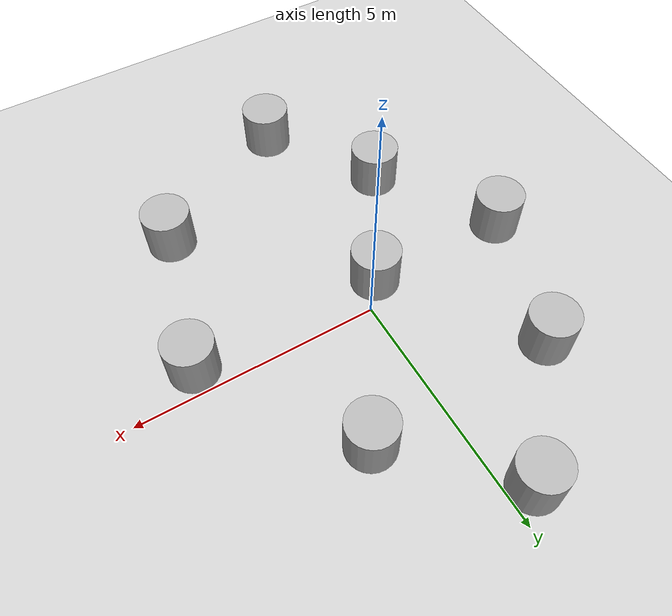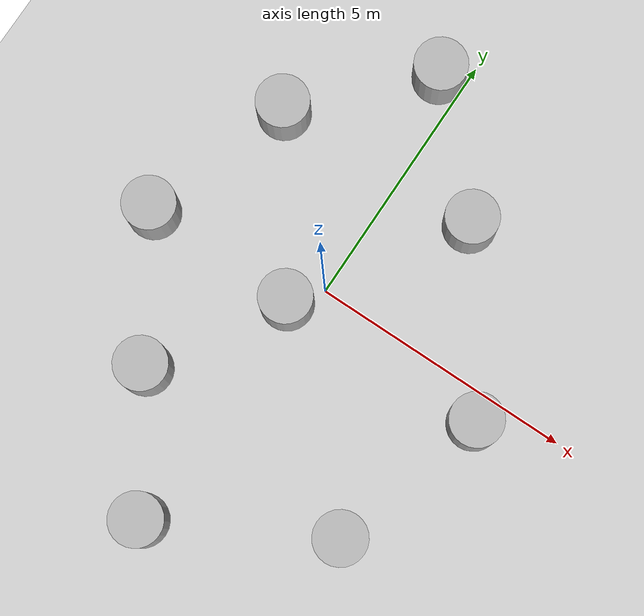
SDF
<sdf version='1.10'>
  <world name='empty'>
    <physics name='1ms' type='ignored'>
      <max_step_size>0.001</max_step_size>
      <real_time_factor>1</real_time_factor>
      <real_time_update_rate>1000</real_time_update_rate>
    </physics>
    <plugin name='gz::sim::systems::Physics' filename='gz-sim-physics-system'/>
    <plugin name='gz::sim::systems::UserCommands' filename='gz-sim-user-commands-system'/>
    <plugin name='gz::sim::systems::SceneBroadcaster' filename='gz-sim-scene-broadcaster-system'/>
    <plugin name='gz::sim::systems::Sensors' filename='gz-sim-sensors-system'>
      <render_engine>ogre2</render_engine>
    </plugin>
    <plugin name='gz::sim::systems::Contact' filename='gz-sim-contact-system'/>
    <gravity>0 0 -9.8000000000000007</gravity>
    <magnetic_field>5.5644999999999998e-06 2.2875799999999999e-05 -4.2388400000000002e-05</magnetic_field>
    <atmosphere type='adiabatic'/>
    <scene>
      <ambient>0.400000006 0.400000006 0.400000006 1</ambient>
      <background>0.699999988 0.699999988 0.699999988 1</background>
      <shadows>true</shadows>
    </scene>
    <model name='ground_plane'>
      <static>true</static>
      <link name='link'>
        <collision name='collision'>
          <geometry>
            <plane>
              <normal>0 0 1</normal>
              <size>100 100</size>
            </plane>
          </geometry>
          <surface>
            <friction>
              <ode/>
            </friction>
            <bounce/>
            <contact/>
          </surface>
        </collision>
        <visual name='visual'>
          <geometry>
            <plane>
              <normal>0 0 1</normal>
              <size>100 100</size>
            </plane>
          </geometry>
          <material>
            <ambient>0.800000012 0.800000012 0.800000012 1</ambient>
            <diffuse>0.800000012 0.800000012 0.800000012 1</diffuse>
            <specular>0.800000012 0.800000012 0.800000012 1</specular>
          </material>
        </visual>
        <pose>0 0 0 0 0 0</pose>
        <inertial>
          <pose>0 0 0 0 0 0</pose>
          <mass>1</mass>
          <inertia>
            <ixx>1</ixx>
            <ixy>0</ixy>
            <ixz>0</ixz>
            <iyy>1</iyy>
            <iyz>0</iyz>
            <izz>1</izz>
          </inertia>
        </inertial>
        <enable_wind>false</enable_wind>
      </link>
      <pose>0 0 0 0 0 0</pose>
      <self_collide>false</self_collide>
    </model>
    <model name='cylinder'>
      <pose>1.5206919598377189 2.4457284120281493 0.49999942638036005 -3.0742062483482892e-19 -1.6712507613372744e-19 7.0258933935587091e-21</pose>
      <link name='cylinder_link'>
        <inertial>
          <inertia>
            <ixx>0.14580000000000001</ixx>
            <ixy>0</ixy>
            <ixz>0</ixz>
            <iyy>0.14580000000000001</iyy>
            <iyz>0</iyz>
            <izz>0.125</izz>
          </inertia>
          <mass>1</mass>
          <pose>0 0 0 0 0 0</pose>
        </inertial>
        <collision name='cylinder_collision'>
          <geometry>
            <cylinder>
              <radius>0.5</radius>
              <length>1</length>
            </cylinder>
          </geometry>
          <surface>
            <friction>
              <ode/>
            </friction>
            <bounce/>
            <contact/>
          </surface>
        </collision>
        <visual name='cylinder_visual'>
          <geometry>
            <cylinder>
              <radius>0.5</radius>
              <length>1</length>
            </cylinder>
          </geometry>
          <material>
            <ambient>0.300000012 0.300000012 0.300000012 1</ambient>
            <diffuse>0.699999988 0.699999988 0.699999988 1</diffuse>
            <specular>1 1 1 1</specular>
          </material>
        </visual>
        <pose>0 0 0 0 0 0</pose>
        <enable_wind>false</enable_wind>
      </link>
      <static>false</static>
      <self_collide>false</self_collide>
    </model>
    <model name='cylinder_0'>
      <pose>3.5572772779018953 -0.53114384695691352 0.49999942638036005 9.0519901646063851e-21 2.9005679869438601e-20 2.6471151654103933e-20</pose>
      <link name='cylinder_link'>
        <inertial>
          <inertia>
            <ixx>0.14580000000000001</ixx>
            <ixy>0</ixy>
            <ixz>0</ixz>
            <iyy>0.14580000000000001</iyy>
            <iyz>0</iyz>
            <izz>0.125</izz>
          </inertia>
          <mass>1</mass>
          <pose>0 0 0 0 0 0</pose>
        </inertial>
        <collision name='cylinder_collision'>
          <geometry>
            <cylinder>
              <radius>0.5</radius>
              <length>1</length>
            </cylinder>
          </geometry>
          <surface>
            <friction>
              <ode/>
            </friction>
            <bounce/>
            <contact/>
          </surface>
        </collision>
        <visual name='cylinder_visual'>
          <geometry>
            <cylinder>
              <radius>0.5</radius>
              <length>1</length>
            </cylinder>
          </geometry>
          <material>
            <ambient>0.300000012 0.300000012 0.300000012 1</ambient>
            <diffuse>0.699999988 0.699999988 0.699999988 1</diffuse>
            <specular>1 1 1 1</specular>
          </material>
        </visual>
        <pose>0 0 0 0 0 0</pose>
        <enable_wind>false</enable_wind>
      </link>
      <static>false</static>
      <self_collide>false</self_collide>
    </model>
    <model name='cylinder_1'>
      <pose>2.7136314325711135 -3.5574934132697797 0.49999942638036005 4.9509906098086444e-19 -1.1631512895488594e-20 2.5267465541505608e-20</pose>
      <link name='cylinder_link'>
        <inertial>
          <inertia>
            <ixx>0.14580000000000001</ixx>
            <ixy>0</ixy>
            <ixz>0</ixz>
            <iyy>0.14580000000000001</iyy>
            <iyz>0</iyz>
            <izz>0.125</izz>
          </inertia>
          <mass>1</mass>
          <pose>0 0 0 0 0 0</pose>
        </inertial>
        <collision name='cylinder_collision'>
          <geometry>
            <cylinder>
              <radius>0.5</radius>
              <length>1</length>
            </cylinder>
          </geometry>
          <surface>
            <friction>
              <ode/>
            </friction>
            <bounce/>
            <contact/>
          </surface>
        </collision>
        <visual name='cylinder_visual'>
          <geometry>
            <cylinder>
              <radius>0.5</radius>
              <length>1</length>
            </cylinder>
          </geometry>
          <material>
            <ambient>0.300000012 0.300000012 0.300000012 1</ambient>
            <diffuse>0.699999988 0.699999988 0.699999988 1</diffuse>
            <specular>1 1 1 1</specular>
          </material>
        </visual>
        <pose>0 0 0 0 0 0</pose>
        <enable_wind>false</enable_wind>
      </link>
      <static>false</static>
      <self_collide>false</self_collide>
    </model>
    <model name='cylinder_2'>
      <pose>-0.47970708858159838 4.4769472159658408 0.49999942638036005 1.962195259112007e-19 -6.1500596495110651e-20 6.3763519287226557e-23</pose>
      <link name='cylinder_link'>
        <inertial>
          <inertia>
            <ixx>0.14580000000000001</ixx>
            <ixy>0</ixy>
            <ixz>0</ixz>
            <iyy>0.14580000000000001</iyy>
            <iyz>0</iyz>
            <izz>0.125</izz>
          </inertia>
          <mass>1</mass>
          <pose>0 0 0 0 0 0</pose>
        </inertial>
        <collision name='cylinder_collision'>
          <geometry>
            <cylinder>
              <radius>0.5</radius>
              <length>1</length>
            </cylinder>
          </geometry>
          <surface>
            <friction>
              <ode/>
            </friction>
            <bounce/>
            <contact/>
          </surface>
        </collision>
        <visual name='cylinder_visual'>
          <geometry>
            <cylinder>
              <radius>0.5</radius>
              <length>1</length>
            </cylinder>
          </geometry>
          <material>
            <ambient>0.300000012 0.300000012 0.300000012 1</ambient>
            <diffuse>0.699999988 0.699999988 0.699999988 1</diffuse>
            <specular>1 1 1 1</specular>
          </material>
        </visual>
        <pose>0 0 0 0 0 0</pose>
        <enable_wind>false</enable_wind>
      </link>
      <static>false</static>
      <self_collide>false</self_collide>
    </model>
    <model name='cylinder_3'>
      <pose>-0.41180801215115093 -5.2546763247008466 0.49999942638036005 -5.5780793823872366e-19 1.7094970509662795e-19 1.2922423936332789e-20</pose>
      <link name='cylinder_link'>
        <inertial>
          <inertia>
            <ixx>0.14580000000000001</ixx>
            <ixy>0</ixy>
            <ixz>0</ixz>
            <iyy>0.14580000000000001</iyy>
            <iyz>0</iyz>
            <izz>0.125</izz>
          </inertia>
          <mass>1</mass>
          <pose>0 0 0 0 0 0</pose>
        </inertial>
        <collision name='cylinder_collision'>
          <geometry>
            <cylinder>
              <radius>0.5</radius>
              <length>1</length>
            </cylinder>
          </geometry>
          <surface>
            <friction>
              <ode/>
            </friction>
            <bounce/>
            <contact/>
          </surface>
        </collision>
        <visual name='cylinder_visual'>
          <geometry>
            <cylinder>
              <radius>0.5</radius>
              <length>1</length>
            </cylinder>
          </geometry>
          <material>
            <ambient>0.300000012 0.300000012 0.300000012 1</ambient>
            <diffuse>0.699999988 0.699999988 0.699999988 1</diffuse>
            <specular>1 1 1 1</specular>
          </material>
        </visual>
        <pose>0 0 0 0 0 0</pose>
        <enable_wind>false</enable_wind>
      </link>
      <static>false</static>
      <self_collide>false</self_collide>
    </model>
    <model name='cylinder_4'>
      <pose>-2.4708390112800047 2.3253330258969531 0.49999942638036005 -7.9109383142446437e-20 -2.7205497272910753e-19 6.0751379184929985e-21</pose>
      <link name='cylinder_link'>
        <inertial>
          <inertia>
            <ixx>0.14580000000000001</ixx>
            <ixy>0</ixy>
            <ixz>0</ixz>
            <iyy>0.14580000000000001</iyy>
            <iyz>0</iyz>
            <izz>0.125</izz>
          </inertia>
          <mass>1</mass>
          <pose>0 0 0 0 0 0</pose>
        </inertial>
        <collision name='cylinder_collision'>
          <geometry>
            <cylinder>
              <radius>0.5</radius>
              <length>1</length>
            </cylinder>
          </geometry>
          <surface>
            <friction>
              <ode/>
            </friction>
            <bounce/>
            <contact/>
          </surface>
        </collision>
        <visual name='cylinder_visual'>
          <geometry>
            <cylinder>
              <radius>0.5</radius>
              <length>1</length>
            </cylinder>
          </geometry>
          <material>
            <ambient>0.300000012 0.300000012 0.300000012 1</ambient>
            <diffuse>0.699999988 0.699999988 0.699999988 1</diffuse>
            <specular>1 1 1 1</specular>
          </material>
        </visual>
        <pose>0 0 0 0 0 0</pose>
        <enable_wind>false</enable_wind>
      </link>
      <static>false</static>
      <self_collide>false</self_collide>
    </model>
    <model name='cylinder_5'>
      <pose>-3.4075391720414534 -0.53755814797992585 0.49999942638036005 -1.9259530208646782e-19 -1.4450651311769748e-19 -4.0682917337483703e-22</pose>
      <link name='cylinder_link'>
        <inertial>
          <inertia>
            <ixx>0.14580000000000001</ixx>
            <ixy>0</ixy>
            <ixz>0</ixz>
            <iyy>0.14580000000000001</iyy>
            <iyz>0</iyz>
            <izz>0.125</izz>
          </inertia>
          <mass>1</mass>
          <pose>0 0 0 0 0 0</pose>
        </inertial>
        <collision name='cylinder_collision'>
          <geometry>
            <cylinder>
              <radius>0.5</radius>
              <length>1</length>
            </cylinder>
          </geometry>
          <surface>
            <friction>
              <ode/>
            </friction>
            <bounce/>
            <contact/>
          </surface>
        </collision>
        <visual name='cylinder_visual'>
          <geometry>
            <cylinder>
              <radius>0.5</radius>
              <length>1</length>
            </cylinder>
          </geometry>
          <material>
            <ambient>0.300000012 0.300000012 0.300000012 1</ambient>
            <diffuse>0.699999988 0.699999988 0.699999988 1</diffuse>
            <specular>1 1 1 1</specular>
          </material>
        </visual>
        <pose>0 0 0 0 0 0</pose>
        <enable_wind>false</enable_wind>
      </link>
      <static>false</static>
      <self_collide>false</self_collide>
    </model>
    <model name='cylinder_6'>
      <pose>-1.8941872428000988 -2.9790689069519973 0.49999942638036005 2.4450730278868892e-21 1.1346982610160267e-19 1.5981903335329451e-20</pose>
      <link name='cylinder_link'>
        <inertial>
          <inertia>
            <ixx>0.14580000000000001</ixx>
            <ixy>0</ixy>
            <ixz>0</ixz>
            <iyy>0.14580000000000001</iyy>
            <iyz>0</iyz>
            <izz>0.125</izz>
          </inertia>
          <mass>1</mass>
          <pose>0 0 0 0 0 0</pose>
        </inertial>
        <collision name='cylinder_collision'>
          <geometry>
            <cylinder>
              <radius>0.5</radius>
              <length>1</length>
            </cylinder>
          </geometry>
          <surface>
            <friction>
              <ode/>
            </friction>
            <bounce/>
            <contact/>
          </surface>
        </collision>
        <visual name='cylinder_visual'>
          <geometry>
            <cylinder>
              <radius>0.5</radius>
              <length>1</length>
            </cylinder>
          </geometry>
          <material>
            <ambient>0.300000012 0.300000012 0.300000012 1</ambient>
            <diffuse>0.699999988 0.699999988 0.699999988 1</diffuse>
            <specular>1 1 1 1</specular>
          </material>
        </visual>
        <pose>0 0 0 0 0 0</pose>
        <enable_wind>false</enable_wind>
      </link>
      <static>false</static>
      <self_collide>false</self_collide>
    </model>
    <model name='cylinder_7'>
      <pose>-0.44497565154483976 -0.58336756663479294 0.49999942638036005 7.0975509288534408e-20 -1.1672325185290207e-20 2.3819947497222536e-21</pose>
      <link name='cylinder_link'>
        <inertial>
          <inertia>
            <ixx>0.14580000000000001</ixx>
            <ixy>0</ixy>
            <ixz>0</ixz>
            <iyy>0.14580000000000001</iyy>
            <iyz>0</iyz>
            <izz>0.125</izz>
          </inertia>
          <mass>1</mass>
          <pose>0 0 0 0 0 0</pose>
        </inertial>
        <collision name='cylinder_collision'>
          <geometry>
            <cylinder>
              <radius>0.5</radius>
              <length>1</length>
            </cylinder>
          </geometry>
          <surface>
            <friction>
              <ode/>
            </friction>
            <bounce/>
            <contact/>
          </surface>
        </collision>
        <visual name='cylinder_visual'>
          <geometry>
            <cylinder>
              <radius>0.5</radius>
              <length>1</length>
            </cylinder>
          </geometry>
          <material>
            <ambient>0.300000012 0.300000012 0.300000012 1</ambient>
            <diffuse>0.699999988 0.699999988 0.699999988 1</diffuse>
            <specular>1 1 1 1</specular>
          </material>
        </visual>
        <pose>0 0 0 0 0 0</pose>
        <enable_wind>false</enable_wind>
      </link>
      <static>false</static>
      <self_collide>false</self_collide>
    </model>
    <light name='sun' type='directional'>
      <pose>0 0 10 0 0 0</pose>
      <cast_shadows>true</cast_shadows>
      <intensity>1</intensity>
      <direction>-0.5 0.10000000000000001 -0.90000000000000002</direction>
      <diffuse>0.800000012 0.800000012 0.800000012 1</diffuse>
      <specular>0.200000003 0.200000003 0.200000003 1</specular>
      <attenuation>
        <range>1000</range>
        <linear>0.01</linear>
        <constant>0.90000000000000002</constant>
        <quadratic>0.001</quadratic>
      </attenuation>
      <spot>
        <inner_angle>0</inner_angle>
        <outer_angle>0</outer_angle>
        <falloff>0</falloff>
      </spot>
    </light>
  </world>
</sdf>
